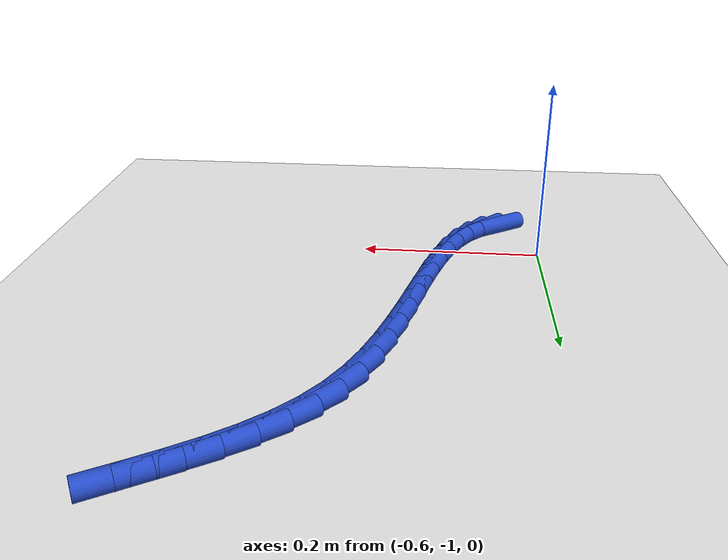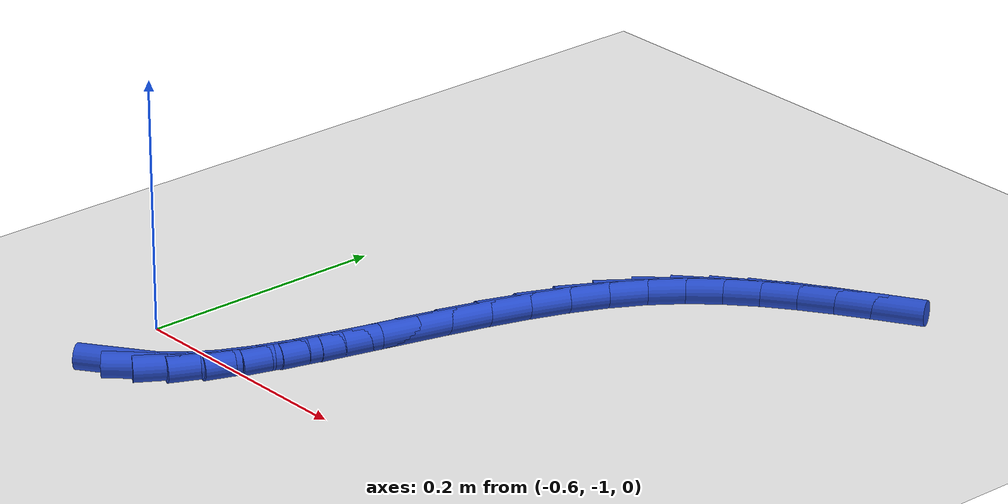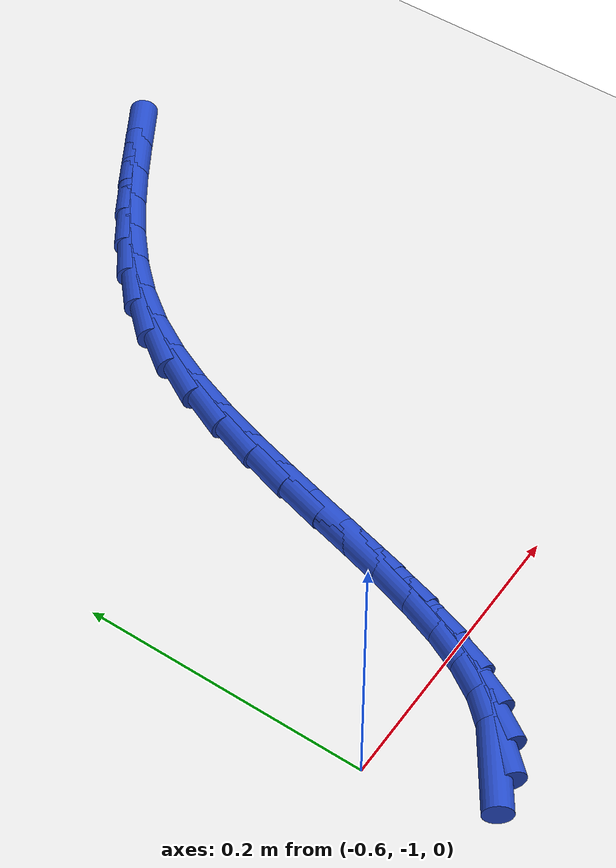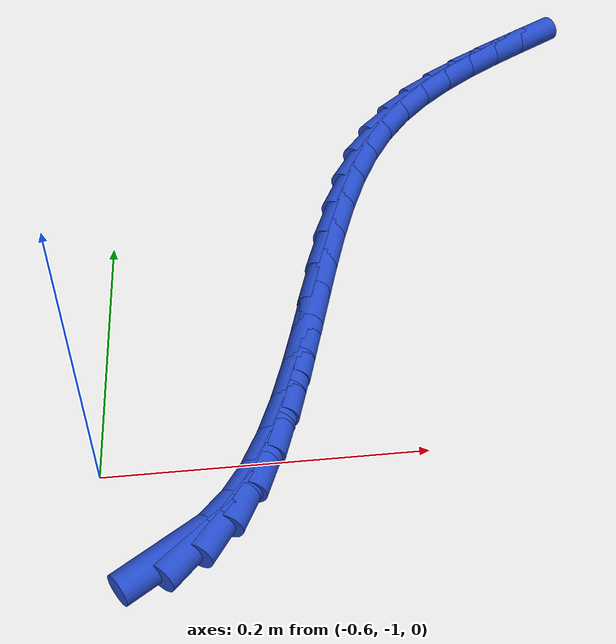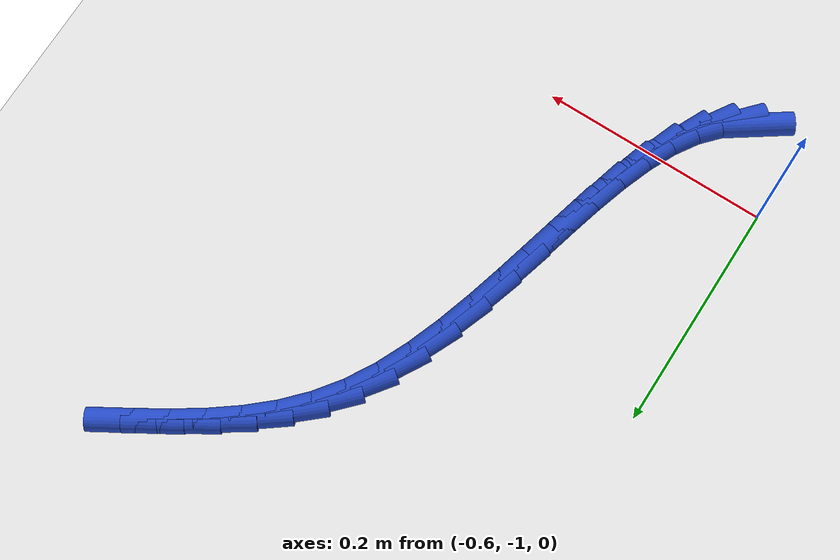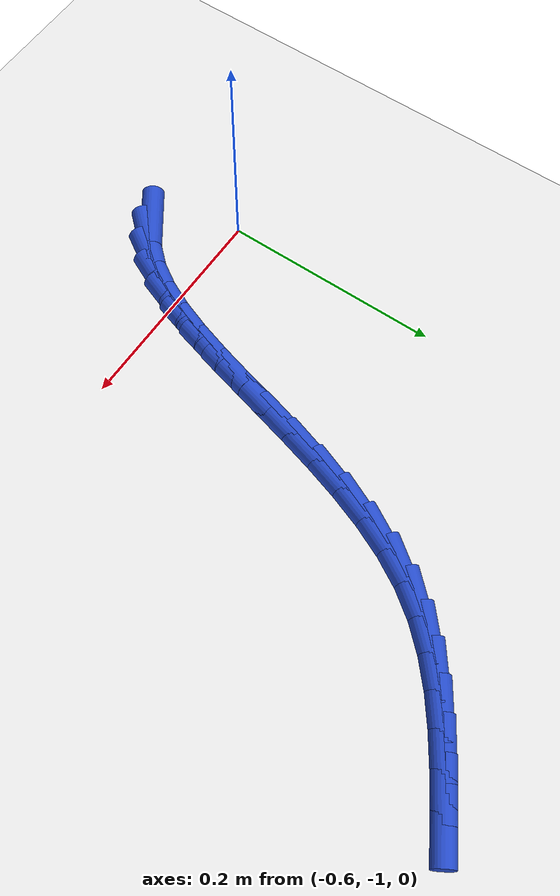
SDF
<sdf version="1.6">
 <world name="default">
  <model name="ground_plane">
   <static>1</static>
   <link name="link">
    <collision name="collision">
     <geometry><plane><normal>0 0 1</normal><size>100 100</size></plane></geometry>
     <surface><friction><ode><mu>100</mu><mu2>50</mu2></ode></friction></surface>
    </collision>
    <visual name="visual">
     <cast_shadows>0</cast_shadows>
     <geometry><plane><normal>0 0 1</normal><size>100 100</size></plane></geometry>
     <material>
      <script><uri>file://media/materials/scripts/gazebo.material</uri><name>Gazebo/WhiteGlow</name></script>
     </material>
    </visual>
   </link>
  </model>
  <model name="line">
   <link name="link_206">
    <pose>-0.5520010787754024 -1.061531046177232 0.01 0 1.57 0.6072557781644857</pose>
    <collision name="collision">
     <geometry><cylinder><radius>0.01</radius><length>0.08</length></cylinder></geometry>
    </collision>
    <visual name="visual">
     <material>
      <script><name>Gazebo/Blue</name><uri>file://media/materials/scripts/gazebo.material</uri></script>
     </material>
     <geometry><cylinder><radius>0.01</radius><length>0.08</length></cylinder></geometry>
    </visual>
   </link>
   <link name="link_207">
    <pose>-0.5345510973658383 -1.0494060673909966 0.01 0 1.57 0.8334810937163548</pose>
    <collision name="collision">
     <geometry><cylinder><radius>0.01</radius><length>0.08</length></cylinder></geometry>
    </collision>
    <visual name="visual">
     <material>
      <script><name>Gazebo/Blue</name><uri>file://media/materials/scripts/gazebo.material</uri></script>
     </material>
     <geometry><cylinder><radius>0.01</radius><length>0.08</length></cylinder></geometry>
    </visual>
   </link>
   <link name="link_208">
    <pose>-0.5195994039349732 -1.0329426796239212 0.01 0 1.57 1.0059569980266714</pose>
    <collision name="collision">
     <geometry><cylinder><radius>0.01</radius><length>0.08</length></cylinder></geometry>
    </collision>
    <visual name="visual">
     <material>
      <script><name>Gazebo/Blue</name><uri>file://media/materials/scripts/gazebo.material</uri></script>
     </material>
     <geometry><cylinder><radius>0.01</radius><length>0.08</length></cylinder></geometry>
    </visual>
   </link>
   <link name="link_209">
    <pose>-0.5067610783704259 -1.0126837394039268 0.01 0 1.57 1.1293678460972698</pose>
    <collision name="collision">
     <geometry><cylinder><radius>0.01</radius><length>0.08</length></cylinder></geometry>
    </collision>
    <visual name="visual">
     <material>
      <script><name>Gazebo/Blue</name><uri>file://media/materials/scripts/gazebo.material</uri></script>
     </material>
     <geometry><cylinder><radius>0.01</radius><length>0.08</length></cylinder></geometry>
    </visual>
   </link>
   <link name="link_210">
    <pose>-0.495651200559815 -0.9891721032589343 0.01 0 1.57 1.214257732817796</pose>
    <collision name="collision">
     <geometry><cylinder><radius>0.01</radius><length>0.08</length></cylinder></geometry>
    </collision>
    <visual name="visual">
     <material>
      <script><name>Gazebo/Blue</name><uri>file://media/materials/scripts/gazebo.material</uri></script>
     </material>
     <geometry><cylinder><radius>0.01</radius><length>0.08</length></cylinder></geometry>
    </visual>
   </link>
   <link name="link_211">
    <pose>-0.485884850390759 -0.9629506277168651 0.01 0 1.57 1.269955412511878</pose>
    <collision name="collision">
     <geometry><cylinder><radius>0.01</radius><length>0.08</length></cylinder></geometry>
    </collision>
    <visual name="visual">
     <material>
      <script><name>Gazebo/Blue</name><uri>file://media/materials/scripts/gazebo.material</uri></script>
     </material>
     <geometry><cylinder><radius>0.01</radius><length>0.08</length></cylinder></geometry>
    </visual>
   </link>
   <link name="link_212">
    <pose>-0.47707710775087714 -0.9345621693056411 0.01 0 1.57 1.3030313369317184</pose>
    <collision name="collision">
     <geometry><cylinder><radius>0.01</radius><length>0.08</length></cylinder></geometry>
    </collision>
    <visual name="visual">
     <material>
      <script><name>Gazebo/Blue</name><uri>file://media/materials/scripts/gazebo.material</uri></script>
     </material>
     <geometry><cylinder><radius>0.01</radius><length>0.08</length></cylinder></geometry>
    </visual>
   </link>
   <link name="link_213">
    <pose>-0.4688430525277878 -0.9045495845531836 0.01 0 1.57 1.3176069184883719</pose>
    <collision name="collision">
     <geometry><cylinder><radius>0.01</radius><length>0.08</length></cylinder></geometry>
    </collision>
    <visual name="visual">
     <material>
      <script><name>Gazebo/Blue</name><uri>file://media/materials/scripts/gazebo.material</uri></script>
     </material>
     <geometry><cylinder><radius>0.01</radius><length>0.08</length></cylinder></geometry>
    </visual>
   </link>
   <link name="link_214">
    <pose>-0.46079776460910987 -0.8734557299874134 0.01 0 1.57 1.315923425533354</pose>
    <collision name="collision">
     <geometry><cylinder><radius>0.01</radius><length>0.08</length></cylinder></geometry>
    </collision>
    <visual name="visual">
     <material>
      <script><name>Gazebo/Blue</name><uri>file://media/materials/scripts/gazebo.material</uri></script>
     </material>
     <geometry><cylinder><radius>0.01</radius><length>0.08</length></cylinder></geometry>
    </visual>
   </link>
   <link name="link_215">
    <pose>-0.4525563238824618 -0.8418234621362524 0.01 0 1.57 1.2987635492027805</pose>
    <collision name="collision">
     <geometry><cylinder><radius>0.01</radius><length>0.08</length></cylinder></geometry>
    </collision>
    <visual name="visual">
     <material>
      <script><name>Gazebo/Blue</name><uri>file://media/materials/scripts/gazebo.material</uri></script>
     </material>
     <geometry><cylinder><radius>0.01</radius><length>0.08</length></cylinder></geometry>
    </visual>
   </link>
   <link name="link_216">
    <pose>-0.4437338102354624 -0.810195637527621 0.01 0 1.57 1.2656899059224929</pose>
    <collision name="collision">
     <geometry><cylinder><radius>0.01</radius><length>0.08</length></cylinder></geometry>
    </collision>
    <visual name="visual">
     <material>
      <script><name>Gazebo/Blue</name><uri>file://media/materials/scripts/gazebo.material</uri></script>
     </material>
     <geometry><cylinder><radius>0.01</radius><length>0.08</length></cylinder></geometry>
    </visual>
   </link>
   <link name="link_217">
    <pose>-0.43394530355573036 -0.7791151126894413 0.01 0 1.57 1.2151563378869639</pose>
    <collision name="collision">
     <geometry><cylinder><radius>0.01</radius><length>0.08</length></cylinder></geometry>
    </collision>
    <visual name="visual">
     <material>
      <script><name>Gazebo/Blue</name><uri>file://media/materials/scripts/gazebo.material</uri></script>
     </material>
     <geometry><cylinder><radius>0.01</radius><length>0.08</length></cylinder></geometry>
    </visual>
   </link>
   <link name="link_218">
    <pose>-0.4228058837308845 -0.7491247441496346 0.01 0 1.57 1.1445913466083424</pose>
    <collision name="collision">
     <geometry><cylinder><radius>0.01</radius><length>0.08</length></cylinder></geometry>
    </collision>
    <visual name="visual">
     <material>
      <script><name>Gazebo/Blue</name><uri>file://media/materials/scripts/gazebo.material</uri></script>
     </material>
     <geometry><cylinder><radius>0.01</radius><length>0.08</length></cylinder></geometry>
    </visual>
   </link>
   <link name="link_219">
    <pose>-0.40993063064854357 -0.7207673884361221 0.01 0 1.57 1.0506385160952267</pose>
    <collision name="collision">
     <geometry><cylinder><radius>0.01</radius><length>0.08</length></cylinder></geometry>
    </collision>
    <visual name="visual">
     <material>
      <script><name>Gazebo/Blue</name><uri>file://media/materials/scripts/gazebo.material</uri></script>
     </material>
     <geometry><cylinder><radius>0.01</radius><length>0.08</length></cylinder></geometry>
    </visual>
   </link>
   <link name="link_220">
    <pose>-0.39493462419632597 -0.6945859020768249 0.01 0 1.57 0.9332971298625833</pose>
    <collision name="collision">
     <geometry><cylinder><radius>0.01</radius><length>0.08</length></cylinder></geometry>
    </collision>
    <visual name="visual">
     <material>
      <script><name>Gazebo/Blue</name><uri>file://media/materials/scripts/gazebo.material</uri></script>
     </material>
     <geometry><cylinder><radius>0.01</radius><length>0.08</length></cylinder></geometry>
    </visual>
   </link>
   <link name="link_221">
    <pose>-0.3774984739149834 -0.6710446579828778 0.01 0 1.57 0.8183449438093474</pose>
    <collision name="collision">
     <geometry><cylinder><radius>0.01</radius><length>0.08</length></cylinder></geometry>
    </collision>
    <visual name="visual">
     <material>
      <script><name>Gazebo/Blue</name><uri>file://media/materials/scripts/gazebo.material</uri></script>
     </material>
     <geometry><cylinder><radius>0.01</radius><length>0.08</length></cylinder></geometry>
    </visual>
   </link>
   <link name="link_222">
    <pose>-0.357804003921884 -0.6500077339184306 0.01 0 1.57 0.7214174861731361</pose>
    <collision name="collision">
     <geometry><cylinder><radius>0.01</radius><length>0.08</length></cylinder></geometry>
    </collision>
    <visual name="visual">
     <material>
      <script><name>Gazebo/Blue</name><uri>file://media/materials/scripts/gazebo.material</uri></script>
     </material>
     <geometry><cylinder><radius>0.01</radius><length>0.08</length></cylinder></geometry>
    </visual>
   </link>
   <link name="link_223">
    <pose>-0.33626447585402547 -0.6310620193407775 0.01 0 1.57 0.6446577250989195</pose>
    <collision name="collision">
     <geometry><cylinder><radius>0.01</radius><length>0.08</length></cylinder></geometry>
    </collision>
    <visual name="visual">
     <material>
      <script><name>Gazebo/Blue</name><uri>file://media/materials/scripts/gazebo.material</uri></script>
     </material>
     <geometry><cylinder><radius>0.01</radius><length>0.08</length></cylinder></geometry>
    </visual>
   </link>
   <link name="link_224">
    <pose>-0.31329439674256127 -0.6137929121223659 0.01 0 1.57 0.5884744559516912</pose>
    <collision name="collision">
     <geometry><cylinder><radius>0.01</radius><length>0.08</length></cylinder></geometry>
    </collision>
    <visual name="visual">
     <material>
      <script><name>Gazebo/Blue</name><uri>file://media/materials/scripts/gazebo.material</uri></script>
     </material>
     <geometry><cylinder><radius>0.01</radius><length>0.08</length></cylinder></geometry>
    </visual>
   </link>
   <link name="link_225">
    <pose>-0.28930827361864475 -0.5977858101356426 0.01 0 1.57 0.5525050391039615</pose>
    <collision name="collision">
     <geometry><cylinder><radius>0.01</radius><length>0.08</length></cylinder></geometry>
    </collision>
    <visual name="visual">
     <material>
      <script><name>Gazebo/Blue</name><uri>file://media/materials/scripts/gazebo.material</uri></script>
     </material>
     <geometry><cylinder><radius>0.01</radius><length>0.08</length></cylinder></geometry>
    </visual>
   </link>
   <link name="link_226">
    <pose>-0.26472061351342907 -0.582626111253055 0.01 0 1.57 0.5363161990993857</pose>
    <collision name="collision">
     <geometry><cylinder><radius>0.01</radius><length>0.08</length></cylinder></geometry>
    </collision>
    <visual name="visual">
     <material>
      <script><name>Gazebo/Blue</name><uri>file://media/materials/scripts/gazebo.material</uri></script>
     </material>
     <geometry><cylinder><radius>0.01</radius><length>0.08</length></cylinder></geometry>
    </visual>
   </link>
  </model>
 </world>
</sdf>
